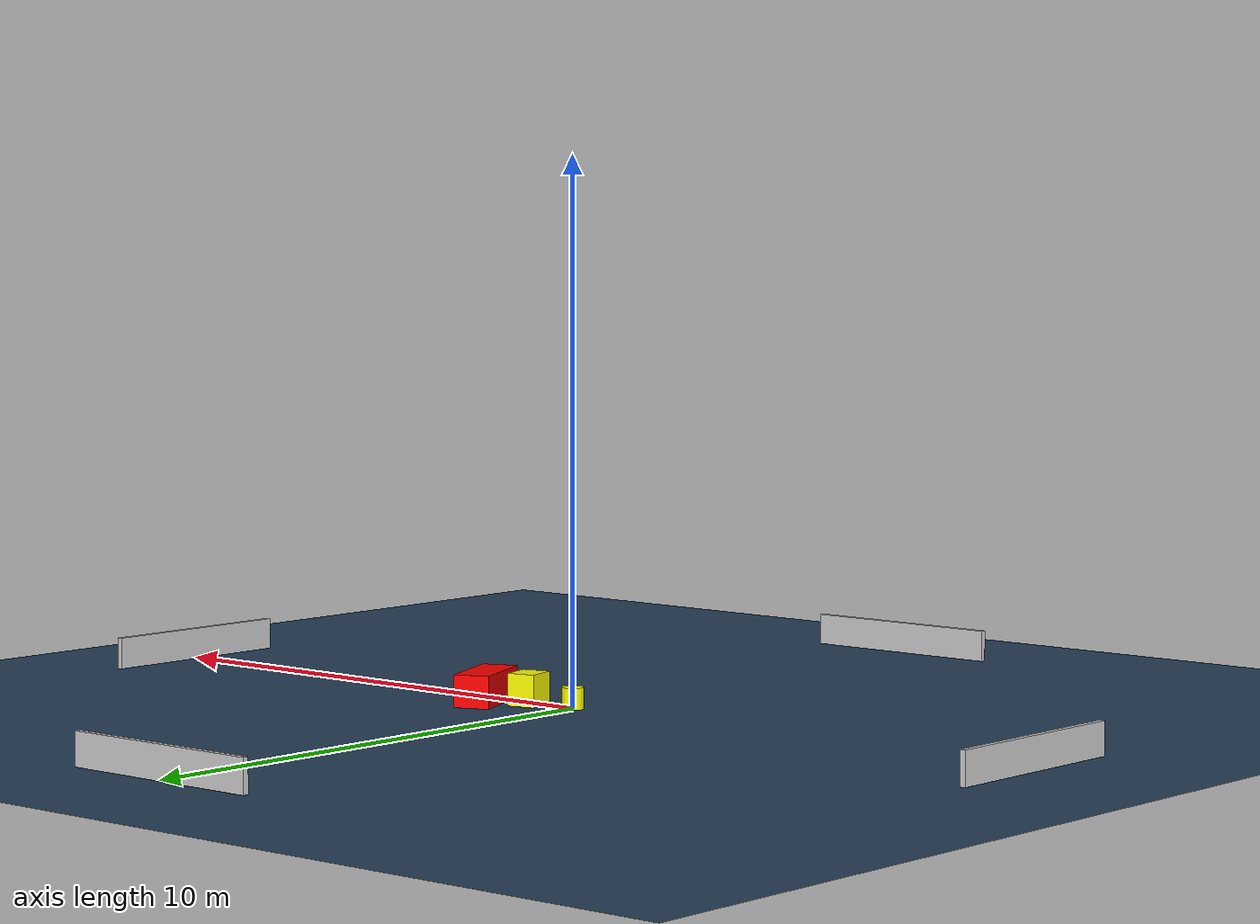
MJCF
<?xml version="1.0" ?>
<mujoco model="generated_environment">
  <option timestep="0.01" integrator="RK4" cone="elliptic"/>
  <default>
    <geom density="1"/>
  </default>
  <asset>
    <texture builtin="gradient" height="3072" name="skybox" rgb1="0.3 0.5 0.7" rgb2="0 0 0" type="skybox" width="512"/>
    <texture builtin="checker" height="300" name="groundplane" rgb1="0.2 0.3 0.4" rgb2="0.1 0.2 0.3" type="2d" width="300"/>
    <material name="groundplane" reflectance="0.2" texrepeat="5 5" texture="groundplane"/>
  </asset>
  <worldbody>
    <light dir="0 0 -1" directional="true" pos="0 0 1.5"/>
    <geom condim="3" friction="0.5 0.005 0.001" material="groundplane" name="floor" pos="0 0 0" size="0 0 0.05" type="plane"/>
    <body name="walls">
      <geom name="wall_1" condim="4" pos="-10.0 0.0 0.3" rgba="0.800000011920929 0.800000011920929 0.800000011920929 1.0" size="0.05 2.0 0.3" type="box"/>
      <geom name="wall_2" condim="4" pos="10.0 0.0 0.3" rgba="0.800000011920929 0.800000011920929 0.800000011920929 1.0" size="0.05 2.0 0.3" type="box"/>
      <geom name="wall_3" condim="4" pos="0.0 -10.0 0.3" rgba="0.800000011920929 0.800000011920929 0.800000011920929 1.0" size="2.0 0.05 0.3" type="box"/>
      <geom name="wall_4" condim="4" pos="0.0 10.0 0.3" rgba="0.800000011920929 0.800000011920929 0.800000011920929 1.0" size="2.0 0.05 0.3" type="box"/>
    </body>
    <body name="robot">
      <joint name="joint_x" type="slide" pos="0 0 0" axis="1 0 0"/>
      <joint name="joint_y" type="slide" pos="0 0 0" axis="0 1 0"/>
      <geom name="robot" type="cylinder" pos="0.0 0.0 0.2" size="0.2 0.2 0.0" mass="5.0" friction="1.0 0.005 0.0001" condim="4" rgba="1.0 1.0 0.0 1.0"/>
    </body>
    <body name="obstacle_1_movable">
      <geom name="obstacle_1_movable" condim="4" pos="0.9129689785519879 0.1759008256389537 0.3" euler="0 0 11.834656511473455" friction="0.0 0.005 0.001" rgba="1.0 1.0 0.0 1.0" size="0.26689523514205227 0.2914584249842039 0.3" type="box" mass="0.1"/>
      <joint type="free"/>
    </body>
    <body name="obstacle_2_static">
      <geom name="obstacle_2_static" condim="4" pos="1.6895494537000109 0.48157311701471817 0.3" euler="0 0 202.12900588090005" friction="0.0 0.005 0.001" rgba="1.0 0.0 0.0 1.0" size="0.3348936213265037 0.7551829559324261 0.3" type="box"/>
    </body>
  </worldbody>
  <actuator>
    <motor name="actuator_x" joint="joint_x" gear="1" ctrlrange="-1 1"/>
    <motor name="actuator_y" joint="joint_y" gear="1" ctrlrange="-1 1"/>
  </actuator>
</mujoco>
